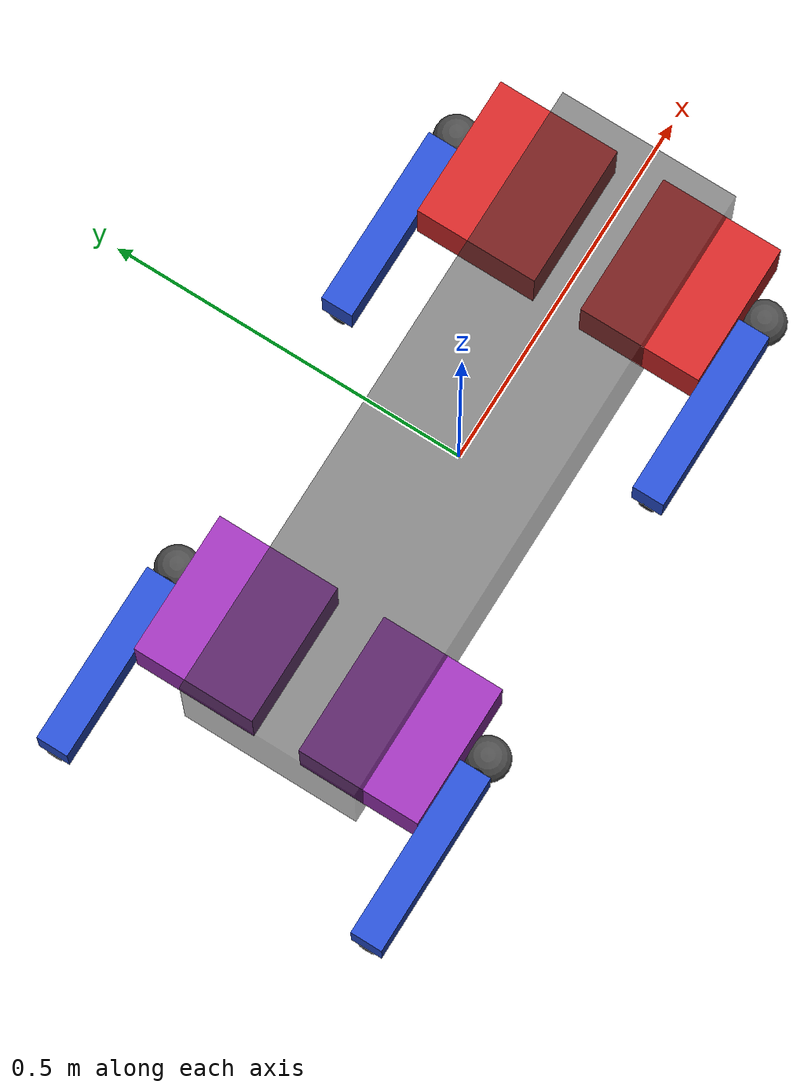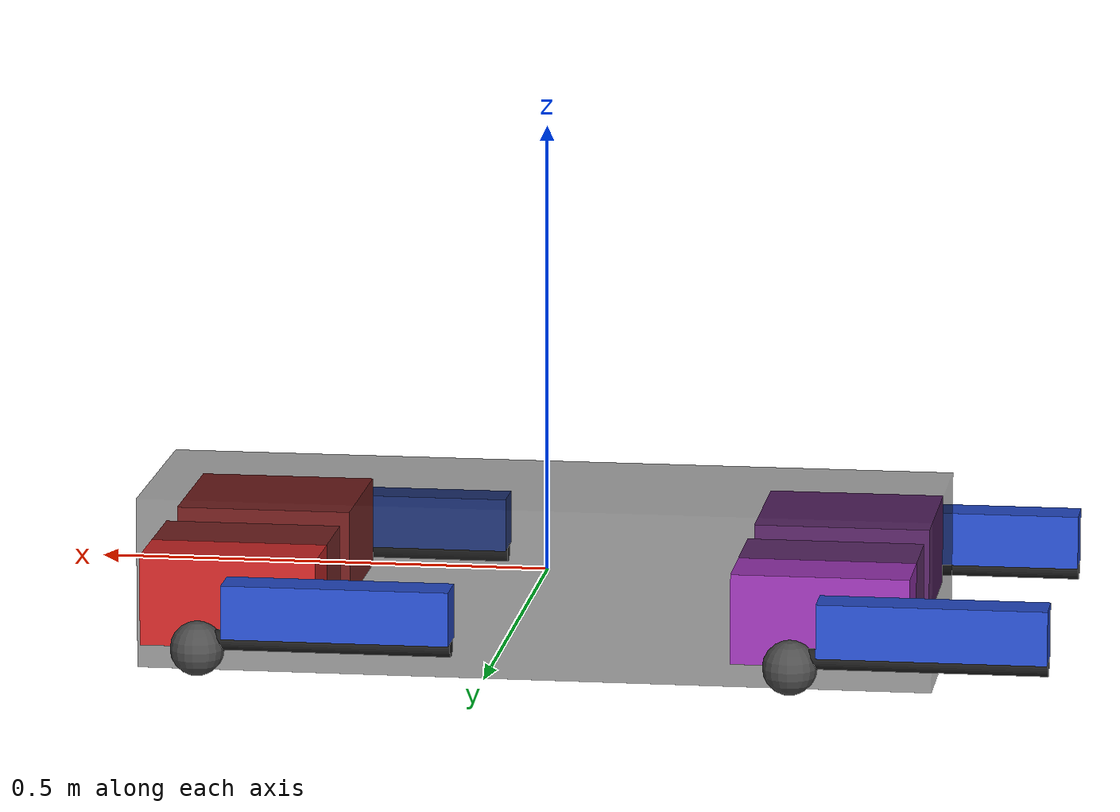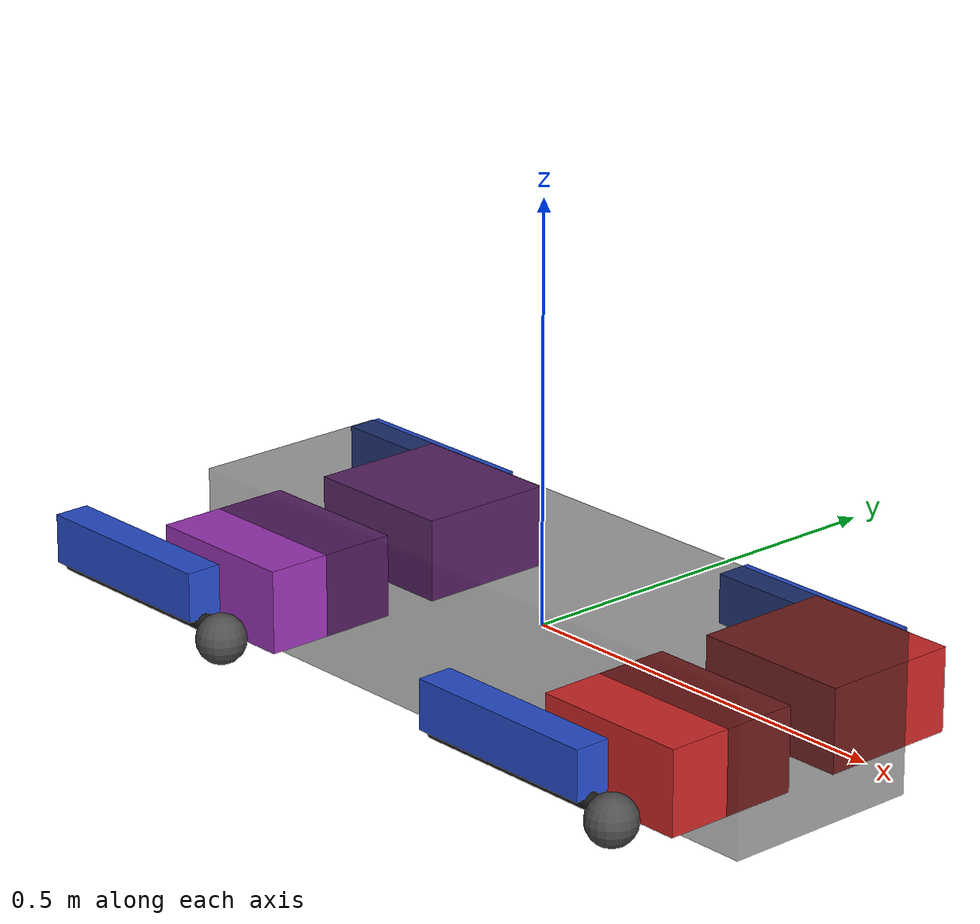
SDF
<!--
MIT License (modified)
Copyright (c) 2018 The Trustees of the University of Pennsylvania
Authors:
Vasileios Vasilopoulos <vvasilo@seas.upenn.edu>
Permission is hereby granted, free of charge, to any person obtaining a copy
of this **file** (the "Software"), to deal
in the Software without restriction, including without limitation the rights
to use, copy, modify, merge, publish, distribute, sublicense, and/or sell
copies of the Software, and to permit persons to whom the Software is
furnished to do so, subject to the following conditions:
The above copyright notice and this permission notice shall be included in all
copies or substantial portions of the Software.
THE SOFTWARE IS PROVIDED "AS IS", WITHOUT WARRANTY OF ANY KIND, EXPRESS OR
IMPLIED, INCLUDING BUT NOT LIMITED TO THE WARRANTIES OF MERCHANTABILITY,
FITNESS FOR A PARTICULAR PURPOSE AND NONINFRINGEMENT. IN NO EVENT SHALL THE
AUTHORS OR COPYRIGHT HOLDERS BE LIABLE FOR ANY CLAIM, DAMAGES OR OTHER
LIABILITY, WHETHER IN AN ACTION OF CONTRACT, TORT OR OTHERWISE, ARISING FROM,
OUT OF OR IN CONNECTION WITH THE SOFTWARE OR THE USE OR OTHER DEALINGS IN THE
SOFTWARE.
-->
<?xml version='1.0'?>

<sdf version='1.6'>
  <model name='vision60'>
    <link name='body'>
      <pose frame=''>0 0 0 0 -0 0</pose>
      <inertial>
        <pose frame=''>0 0 0 0 -0 0</pose>
        <mass>12</mass>
        <inertia>
          <ixx>0.0986</ixx>
          <ixy>0</ixy>
          <ixz>0</ixz>
          <iyy>0.8105</iyy>
          <iyz>0</iyz>
          <izz>0.8369</izz>
        </inertia>
      </inertial>
      <collision name='body_collision'>
        <pose frame=''>0 0 0 0 -0 0</pose>
        <geometry>
          <box>
            <size>0.05 0.25 0.19</size>
          </box>
        </geometry>
        <surface>
          <contact>
            <ode/>
          </contact>
          <friction>
            <ode/>
          </friction>
        </surface>
      </collision>
      <visual name='body_visual'>
        <pose frame=''>0 0 0 0 -0 0</pose>
        <geometry>
          <box>
            <size>0.88 0.25 0.19</size>
          </box>
        </geometry>
        <material>
          <script>
            <name>Gazebo/BlackTransparent</name>
            <uri>file://media/materials/scripts/gazebo.material</uri>
          </script>
        </material>
      </visual>
      <gravity>1</gravity>
      <velocity_decay/>
      <self_collide>0</self_collide>
    </link>
    <link name='hip2'>
      <pose frame=''>0.325 -0.1575 0 0 -0 0</pose>
      <inertial>
        <pose frame=''>0 0 0 0 -0 0</pose>
        <mass>2.75</mass>
        <inertia>
          <ixx>0.00891458</ixx>
          <ixy>0</ixy>
          <ixz>0</ixz>
          <iyy>0.0100573</iyy>
          <iyz>0</iyz>
          <izz>0.015337</izz>
        </inertia>
      </inertial>
      <collision name='hip2_collision'>
        <pose frame=''>0 0.039 0 1.5708 -0 0</pose>
        <geometry>
          <box>
            <size>0.195 0.1 0.17</size>
          </box>
        </geometry>
        <surface>
          <contact>
            <ode/>
          </contact>
          <friction>
            <ode/>
          </friction>
        </surface>
      </collision>
      <visual name='hip2_visual'>
        <pose frame=''>0 0.039 0 1.5708 -0 0</pose>
        <geometry>
          <box>
            <size>0.195 0.1 0.17</size>
          </box>
        </geometry>
        <material>
          <script>
            <name>Gazebo/Red</name>
            <uri>file://media/materials/scripts/gazebo.material</uri>
          </script>
        </material>
      </visual>
      <gravity>1</gravity>
      <velocity_decay/>
      <self_collide>0</self_collide>
    </link>
    <joint name='10' type='revolute'>
      <child>hip2</child>
      <parent>body</parent>
      <axis>
        <xyz>1 0 0</xyz>
        <limit>
          <lower>-0.43</lower>
          <upper>0.43</upper>
          <effort>375</effort>
          <velocity>8.6</velocity>
        </limit>
        <dynamics>
          <damping>0</damping>
          <friction>0</friction>
          <spring_reference>0</spring_reference>
          <spring_stiffness>0</spring_stiffness>
        </dynamics>
        <use_parent_model_frame>1</use_parent_model_frame>
      </axis>
    </joint>
    <link name='upper2'>
      <pose frame=''>0.325 -0.2255 0 0 -0 0</pose>
      <inertial>
        <pose frame=''>0 0 0 0 -0 0</pose>
        <mass>0.625</mass>
        <inertia>
          <ixx>0.0003125</ixx>
          <ixy>0</ixy>
          <ixz>0</ixz>
          <iyy>0.0040625</iyy>
          <iyz>0</iyz>
          <izz>0.0040625</izz>
        </inertia>
      </inertial>
      <collision name='upper2_collision'>
        <pose frame=''>-0.125 0 0 0 -0 0</pose>
        <geometry>
          <box>
            <size>0.25 0.044 0.06</size>
          </box>
        </geometry>
        <surface>
          <contact>
            <ode/>
          </contact>
          <friction>
            <ode/>
          </friction>
        </surface>
      </collision>
      <visual name='upper2_visual'>
        <pose frame=''>-0.125 -0 0 0 -0 0</pose>
        <geometry>
          <box>
            <size>0.25 0.044 0.06</size>
          </box>
        </geometry>
        <material>
          <script>
            <name>Gazebo/Blue</name>
            <uri>file://media/materials/scripts/gazebo.material</uri>
          </script>
        </material>
      </visual>
      <gravity>1</gravity>
      <velocity_decay/>
      <self_collide>0</self_collide>
    </link>
    <joint name='4' type='revolute'>
      <child>upper2</child>
      <parent>hip2</parent>
      <axis>
        <xyz>0 -1 0</xyz>
        <limit>
          <lower>-3.14159</lower>
          <upper>3.14159</upper>
          <effort>87.5</effort>
          <velocity>30</velocity>
        </limit>
        <dynamics>
          <damping>0</damping>
          <friction>0</friction>
          <spring_reference>0</spring_reference>
          <spring_stiffness>0</spring_stiffness>
        </dynamics>
        <use_parent_model_frame>1</use_parent_model_frame>
      </axis>
    </joint>
    <link name='lower2'>
      <pose frame=''>0.075 -0.2255 0 0 -0 0</pose>
      <inertial>
        <pose frame=''>0.12 0 -0.019757 0 -0 0</pose>
        <mass>0.35</mass>
        <inertia>
          <ixx>0.00151791</ixx>
          <ixy>0</ixy>
          <ixz>0.0011064</ixz>
          <iyy>0.00823791</iyy>
          <iyz>0</iyz>
          <izz>0.006845</izz>
        </inertia>
      </inertial>
      <collision name='lower2_collision'>
        <pose frame=''>0.14 0 -0.0355 3.14159 1.57079 3.14159</pose>
        <geometry>
          <cylinder>
            <length>0.28</length>
            <radius>0.011</radius>
          </cylinder>
        </geometry>
        <surface>
          <contact>
            <ode/>
          </contact>
          <friction>
            <ode/>
          </friction>
        </surface>
      </collision>
      <collision name='toe2_collision'>
        <pose frame=''>0.28 0 -0.0461 0 -0 0</pose>
        <geometry>
          <sphere>
            <radius>0.03</radius>
          </sphere>
        </geometry>
        <surface>
          <bounce>
            <restitution_coefficient>0</restitution_coefficient>
            <threshold>1e+06</threshold>
          </bounce>
          <friction>
            <torsional>
              <coefficient>0.3</coefficient>
            </torsional>
            <ode>
              <mu>20</mu>
              <mu2>10</mu2>
            </ode>
            <bullet>
              <rolling_friction>0.3</rolling_friction>
              <friction2>10</friction2>
            </bullet>
          </friction>
          <contact>
            <bullet>
              <kp>30000</kp>
              <kd>1000</kd>
              <split_impulse>1</split_impulse>
              <split_impulse_penetration_threshold>-0.01</split_impulse_penetration_threshold>
            </bullet>
            <ode>
              <kp>30000</kp>
              <kd>1000</kd>
            </ode>
          </contact>
        </surface>
      </collision>
      <sensor name="toe2_contact" type="contact">
        <plugin name="toe2_plugin" filename="libcontact.so"/>
        <contact>
          <collision>toe2_collision</collision>
        </contact>
      </sensor>
      <visual name='lower2_visual'>
        <pose frame=''>0.14 0 -0.0355 3.14159 1.57079 3.14159</pose>
        <geometry>
          <cylinder>
            <length>0.28</length>
            <radius>0.011</radius>
          </cylinder>
        </geometry>
        <material>
          <script>
            <name>Gazebo/Black</name>
            <uri>file://media/materials/scripts/gazebo.material</uri>
          </script>
        </material>
      </visual>
      <visual name='lower2_fixed_joint_lump__toe2_visual_1'>
        <pose frame=''>0.28 0 -0.0461 0 -0 0</pose>
        <geometry>
          <sphere>
            <radius>0.03</radius>
          </sphere>
        </geometry>
        <material>
          <script>
            <name>Gazebo/DarkGray</name>
            <uri>file://media/materials/scripts/gazebo.material</uri>
          </script>
        </material>
      </visual>
      <velocity_decay/>
      <gravity>1</gravity>
      <velocity_decay/>
      <self_collide>0</self_collide>
    </link>
    <joint name='5' type='revolute'>
      <child>lower2</child>
      <parent>upper2</parent>
      <axis>
        <xyz>0 1 0</xyz>
        <limit>
          <lower>0</lower>
          <upper>3.14159</upper>
          <effort>87.5</effort>
          <velocity>30</velocity>
        </limit>
        <dynamics>
          <damping>0</damping>
          <friction>0</friction>
          <spring_reference>0</spring_reference>
          <spring_stiffness>0</spring_stiffness>
        </dynamics>
        <use_parent_model_frame>1</use_parent_model_frame>
      </axis>
    </joint>
    <link name='hip3'>
      <pose frame=''>-0.325 -0.1575 0 0 -0 0</pose>
      <inertial>
        <pose frame=''>0 0 0 0 -0 0</pose>
        <mass>2.75</mass>
        <inertia>
          <ixx>0.00891458</ixx>
          <ixy>0</ixy>
          <ixz>0</ixz>
          <iyy>0.0100573</iyy>
          <iyz>0</iyz>
          <izz>0.015337</izz>
        </inertia>
      </inertial>
      <collision name='hip3_collision'>
        <pose frame=''>0 0.039 0 1.5708 -0 0</pose>
        <geometry>
          <box>
            <size>0.195 0.1 0.17</size>
          </box>
        </geometry>
        <surface>
          <contact>
            <ode/>
          </contact>
          <friction>
            <ode/>
          </friction>
        </surface>
      </collision>
      <visual name='hip3_visual'>
        <pose frame=''>0 0.039 0 1.5708 -0 0</pose>
        <geometry>
          <box>
            <size>0.195 0.1 0.17</size>
          </box>
        </geometry>
        <material>
          <script>
            <name>Gazebo/Purple</name>
            <uri>file://media/materials/scripts/gazebo.material</uri>
          </script>
        </material>
      </visual>
      <gravity>1</gravity>
      <velocity_decay/>
      <self_collide>0</self_collide>
    </link>
    <joint name='11' type='revolute'>
      <child>hip3</child>
      <parent>body</parent>
      <axis>
        <xyz>1 0 0</xyz>
        <limit>
          <lower>-0.43</lower>
          <upper>0.43</upper>
          <effort>375</effort>
          <velocity>8.6</velocity>
        </limit>
        <dynamics>
          <damping>0</damping>
          <friction>0</friction>
          <spring_reference>0</spring_reference>
          <spring_stiffness>0</spring_stiffness>
        </dynamics>
        <use_parent_model_frame>1</use_parent_model_frame>
      </axis>
    </joint>
    <link name='upper3'>
      <pose frame=''>-0.325 -0.2255 0 0 -0 0</pose>
      <inertial>
        <pose frame=''>0 0 0 0 -0 0</pose>
        <mass>0.625</mass>
        <inertia>
          <ixx>0.0003125</ixx>
          <ixy>0</ixy>
          <ixz>0</ixz>
          <iyy>0.0040625</iyy>
          <iyz>0</iyz>
          <izz>0.0040625</izz>
        </inertia>
      </inertial>
      <collision name='upper3_collision'>
        <pose frame=''>-0.125 0 0 0 -0 0</pose>
        <geometry>
          <box>
            <size>0.25 0.044 0.06</size>
          </box>
        </geometry>
        <surface>
          <contact>
            <ode/>
          </contact>
          <friction>
            <ode/>
          </friction>
        </surface>
      </collision>
      <visual name='upper3_visual'>
        <pose frame=''>-0.125 -0 0 0 -0 0</pose>
        <geometry>
          <box>
            <size>0.25 0.044 0.06</size>
          </box>
        </geometry>
        <material>
          <script>
            <name>Gazebo/Blue</name>
            <uri>file://media/materials/scripts/gazebo.material</uri>
          </script>
        </material>
      </visual>
      <gravity>1</gravity>
      <velocity_decay/>
      <self_collide>0</self_collide>
    </link>
    <joint name='6' type='revolute'>
      <child>upper3</child>
      <parent>hip3</parent>
      <axis>
        <xyz>0 -1 0</xyz>
        <limit>
          <lower>-3.14159</lower>
          <upper>3.14159</upper>
          <effort>87.5</effort>
          <velocity>30</velocity>
        </limit>
        <dynamics>
          <damping>0</damping>
          <friction>0</friction>
          <spring_reference>0</spring_reference>
          <spring_stiffness>0</spring_stiffness>
        </dynamics>
        <use_parent_model_frame>1</use_parent_model_frame>
      </axis>
    </joint>
    <link name='lower3'>
      <pose frame=''>-0.575 -0.2255 0 0 -0 0</pose>
      <inertial>
        <pose frame=''>0.12 0 -0.019757 0 -0 0</pose>
        <mass>0.35</mass>
        <inertia>
          <ixx>0.00151791</ixx>
          <ixy>0</ixy>
          <ixz>0.0011064</ixz>
          <iyy>0.00823791</iyy>
          <iyz>0</iyz>
          <izz>0.006845</izz>
        </inertia>
      </inertial>
      <collision name='lower3_collision'>
        <pose frame=''>0.14 0 -0.0355 3.14159 1.57079 3.14159</pose>
        <geometry>
          <cylinder>
            <length>0.28</length>
            <radius>0.011</radius>
          </cylinder>
        </geometry>
        <surface>
          <contact>
            <ode/>
          </contact>
          <friction>
            <ode/>
          </friction>
        </surface>
      </collision>
      <collision name='toe3_collision'>
        <pose frame=''>0.28 0 -0.0461 0 -0 0</pose>
        <geometry>
          <sphere>
            <radius>0.03</radius>
          </sphere>
        </geometry>
        <surface>
          <bounce>
            <restitution_coefficient>0</restitution_coefficient>
            <threshold>1e+06</threshold>
          </bounce>
          <friction>
            <torsional>
              <coefficient>0.3</coefficient>
            </torsional>
            <ode>
              <mu>20</mu>
              <mu2>10</mu2>
            </ode>
            <bullet>
              <rolling_friction>0.3</rolling_friction>
              <friction2>10</friction2>
            </bullet>
          </friction>
          <contact>
            <bullet>
              <kp>30000</kp>
              <kd>1000</kd>
              <split_impulse>1</split_impulse>
              <split_impulse_penetration_threshold>-0.01</split_impulse_penetration_threshold>
            </bullet>
            <ode>
              <kp>30000</kp>
              <kd>1000</kd>
            </ode>
          </contact>
        </surface>
      </collision>
      <sensor name="toe3_contact" type="contact">
        <plugin name="toe3_plugin" filename="libcontact.so"/>
        <contact>
          <collision>toe3_collision</collision>
        </contact>
      </sensor>
      <visual name='lower3_visual'>
        <pose frame=''>0.14 0 -0.0355 3.14159 1.57079 3.14159</pose>
        <geometry>
          <cylinder>
            <length>0.28</length>
            <radius>0.011</radius>
          </cylinder>
        </geometry>
        <material>
          <script>
            <name>Gazebo/Black</name>
            <uri>file://media/materials/scripts/gazebo.material</uri>
          </script>
        </material>
      </visual>
      <visual name='lower3_fixed_joint_lump__toe3_visual_1'>
        <pose frame=''>0.28 0 -0.0461 0 -0 0</pose>
        <geometry>
          <sphere>
            <radius>0.03</radius>
          </sphere>
        </geometry>
        <material>
          <script>
            <name>Gazebo/DarkGray</name>
            <uri>file://media/materials/scripts/gazebo.material</uri>
          </script>
        </material>
      </visual>
      <velocity_decay/>
      <gravity>1</gravity>
      <velocity_decay/>
      <self_collide>0</self_collide>
    </link>
    <joint name='7' type='revolute'>
      <child>lower3</child>
      <parent>upper3</parent>
      <axis>
        <xyz>0 1 0</xyz>
        <limit>
          <lower>0</lower>
          <upper>3.14159</upper>
          <effort>87.5</effort>
          <velocity>30</velocity>
        </limit>
        <dynamics>
          <damping>0</damping>
          <friction>0</friction>
          <spring_reference>0</spring_reference>
          <spring_stiffness>0</spring_stiffness>
        </dynamics>
        <use_parent_model_frame>1</use_parent_model_frame>
      </axis>
    </joint>
    <link name='hip0'>
      <pose frame=''>0.325 0.1575 0 0 -0 0</pose>
      <inertial>
        <pose frame=''>0 0 0 0 -0 0</pose>
        <mass>2.75</mass>
        <inertia>
          <ixx>0.00891458</ixx>
          <ixy>0</ixy>
          <ixz>0</ixz>
          <iyy>0.0100573</iyy>
          <iyz>0</iyz>
          <izz>0.015337</izz>
        </inertia>
      </inertial>
      <collision name='hip0_collision'>
        <pose frame=''>0 -0.039 0 1.5708 -0 0</pose>
        <geometry>
          <box>
            <size>0.195 0.1 0.17</size>
          </box>
        </geometry>
        <surface>
          <contact>
            <ode/>
          </contact>
          <friction>
            <ode/>
          </friction>
        </surface>
      </collision>
      <visual name='hip0_visual'>
        <pose frame=''>0 -0.039 0 1.5708 -0 0</pose>
        <geometry>
          <box>
            <size>0.195 0.1 0.17</size>
          </box>
        </geometry>
        <material>
          <script>
            <name>Gazebo/Red</name>
            <uri>file://media/materials/scripts/gazebo.material</uri>
          </script>
        </material>
      </visual>
      <gravity>1</gravity>
      <velocity_decay/>
      <self_collide>0</self_collide>
    </link>
    <joint name='8' type='revolute'>
      <child>hip0</child>
      <parent>body</parent>
      <axis>
        <xyz>1 0 0</xyz>
        <limit>
          <lower>-0.43</lower>
          <upper>0.43</upper>
          <effort>375</effort>
          <velocity>8.6</velocity>
        </limit>
        <dynamics>
          <damping>0</damping>
          <friction>0</friction>
          <spring_reference>0</spring_reference>
          <spring_stiffness>0</spring_stiffness>
        </dynamics>
        <use_parent_model_frame>1</use_parent_model_frame>
      </axis>
    </joint>
    <link name='upper0'>
      <pose frame=''>0.325 0.2255 0 0 -0 0</pose>
      <inertial>
        <pose frame=''>0 0 0 0 -0 0</pose>
        <mass>0.625</mass>
        <inertia>
          <ixx>0.0003125</ixx>
          <ixy>0</ixy>
          <ixz>0</ixz>
          <iyy>0.0040625</iyy>
          <iyz>0</iyz>
          <izz>0.0040625</izz>
        </inertia>
      </inertial>
      <collision name='upper0_collision'>
        <pose frame=''>-0.125 0 0 0 -0 0</pose>
        <geometry>
          <box>
            <size>0.25 0.044 0.06</size>
          </box>
        </geometry>
        <surface>
          <contact>
            <ode/>
          </contact>
          <friction>
            <ode/>
          </friction>
        </surface>
      </collision>
      <visual name='upper0_visual'>
        <pose frame=''>-0.125 0 0 0 -0 0</pose>
        <geometry>
          <box>
            <size>0.25 0.044 0.06</size>
          </box>
        </geometry>
        <material>
          <script>
            <name>Gazebo/Blue</name>
            <uri>file://media/materials/scripts/gazebo.material</uri>
          </script>
        </material>
      </visual>
      <gravity>1</gravity>
      <velocity_decay/>
      <self_collide>0</self_collide>
    </link>
    <joint name='0' type='revolute'>
      <child>upper0</child>
      <parent>hip0</parent>
      <axis>
        <xyz>0 -1 0</xyz>
        <limit>
          <lower>-3.14159</lower>
          <upper>3.14159</upper>
          <effort>87.5</effort>
          <velocity>30</velocity>
        </limit>
        <dynamics>
          <damping>0</damping>
          <friction>0</friction>
          <spring_reference>0</spring_reference>
          <spring_stiffness>0</spring_stiffness>
        </dynamics>
        <use_parent_model_frame>1</use_parent_model_frame>
      </axis>
    </joint>
    <link name='lower0'>
      <pose frame=''>0.075 0.2255 0 0 -0 0</pose>
      <inertial>
        <pose frame=''>0.12 0 -0.019757 0 -0 0</pose>
        <mass>0.35</mass>
        <inertia>
          <ixx>0.00151791</ixx>
          <ixy>0</ixy>
          <ixz>0.0011064</ixz>
          <iyy>0.00823791</iyy>
          <iyz>0</iyz>
          <izz>0.006845</izz>
        </inertia>
      </inertial>
      <collision name='lower0_collision'>
        <pose frame=''>0.14 0 -0.0355 3.14159 1.57079 3.14159</pose>
        <geometry>
          <cylinder>
            <length>0.28</length>
            <radius>0.011</radius>
          </cylinder>
        </geometry>
        <surface>
          <contact>
            <ode/>
          </contact>
          <friction>
            <ode/>
          </friction>
        </surface>
      </collision>
      <collision name='toe0_collision'>
        <pose frame=''>0.28 0 -0.0461 0 -0 0</pose>
        <geometry>
          <sphere>
            <radius>0.03</radius>
          </sphere>
        </geometry>
        <surface>
          <bounce>
            <restitution_coefficient>0</restitution_coefficient>
            <threshold>1e+06</threshold>
          </bounce>
          <friction>
            <torsional>
              <coefficient>0.3</coefficient>
            </torsional>
            <ode>
              <mu>20</mu>
              <mu2>10</mu2>
            </ode>
            <bullet>
              <rolling_friction>0.3</rolling_friction>
              <friction2>10</friction2>
            </bullet>
          </friction>
          <contact>
            <bullet>
              <kp>30000</kp>
              <kd>1000</kd>
              <split_impulse>1</split_impulse>
              <split_impulse_penetration_threshold>-0.01</split_impulse_penetration_threshold>
            </bullet>
            <ode>
              <kp>30000</kp>
              <kd>1000</kd>
            </ode>
          </contact>
        </surface>
      </collision>
      <sensor name="toe0_contact" type="contact">
        <plugin name="toe0_plugin" filename="libcontact.so"/>
        <contact>
          <collision>toe0_collision</collision>
        </contact>
      </sensor>
      <visual name='lower0_visual'>
        <pose frame=''>0.14 0 -0.0355 3.14159 1.57079 3.14159</pose>
        <geometry>
          <cylinder>
            <length>0.28</length>
            <radius>0.011</radius>
          </cylinder>
        </geometry>
        <material>
          <script>
            <name>Gazebo/Black</name>
            <uri>file://media/materials/scripts/gazebo.material</uri>
          </script>
        </material>
      </visual>
      <visual name='lower0_fixed_joint_lump__toe0_visual_1'>
        <pose frame=''>0.28 0 -0.0461 0 -0 0</pose>
        <geometry>
          <sphere>
            <radius>0.03</radius>
          </sphere>
        </geometry>
        <material>
          <script>
            <name>Gazebo/DarkGray</name>
            <uri>file://media/materials/scripts/gazebo.material</uri>
          </script>
        </material>
      </visual>
      <velocity_decay/>
      <gravity>1</gravity>
      <velocity_decay/>
      <self_collide>0</self_collide>
    </link>
    <joint name='1' type='revolute'>
      <child>lower0</child>
      <parent>upper0</parent>
      <axis>
        <xyz>0 1 0</xyz>
        <limit>
          <lower>0</lower>
          <upper>3.14159</upper>
          <effort>87.5</effort>
          <velocity>30</velocity>
        </limit>
        <dynamics>
          <damping>0</damping>
          <friction>0</friction>
          <spring_reference>0</spring_reference>
          <spring_stiffness>0</spring_stiffness>
        </dynamics>
        <use_parent_model_frame>1</use_parent_model_frame>
      </axis>
    </joint>
    <link name='hip1'>
      <pose frame=''>-0.325 0.1575 0 0 -0 0</pose>
      <inertial>
        <pose frame=''>0 0 0 0 -0 0</pose>
        <mass>2.75</mass>
        <inertia>
          <ixx>0.00891458</ixx>
          <ixy>0</ixy>
          <ixz>0</ixz>
          <iyy>0.0100573</iyy>
          <iyz>0</iyz>
          <izz>0.015337</izz>
        </inertia>
      </inertial>
      <collision name='hip1_collision'>
        <pose frame=''>0 -0.039 0 1.5708 -0 0</pose>
        <geometry>
          <box>
            <size>0.195 0.1 0.17</size>
          </box>
        </geometry>
        <surface>
          <contact>
            <ode/>
          </contact>
          <friction>
            <ode/>
          </friction>
        </surface>
      </collision>
      <visual name='hip1_visual'>
        <pose frame=''>0 -0.039 0 1.5708 -0 0</pose>
        <geometry>
          <box>
            <size>0.195 0.1 0.17</size>
          </box>
        </geometry>
        <material>
          <script>
            <name>Gazebo/Purple</name>
            <uri>file://media/materials/scripts/gazebo.material</uri>
          </script>
        </material>
      </visual>
      <gravity>1</gravity>
      <velocity_decay/>
      <self_collide>0</self_collide>
    </link>
    <joint name='9' type='revolute'>
      <child>hip1</child>
      <parent>body</parent>
      <axis>
        <xyz>1 0 0</xyz>
        <limit>
          <lower>-0.43</lower>
          <upper>0.43</upper>
          <effort>375</effort>
          <velocity>8.6</velocity>
        </limit>
        <dynamics>
          <damping>0</damping>
          <friction>0</friction>
          <spring_reference>0</spring_reference>
          <spring_stiffness>0</spring_stiffness>
        </dynamics>
        <use_parent_model_frame>1</use_parent_model_frame>
      </axis>
    </joint>
    <link name='upper1'>
      <pose frame=''>-0.325 0.2255 0 0 -0 0</pose>
      <inertial>
        <pose frame=''>0 0 0 0 -0 0</pose>
        <mass>0.625</mass>
        <inertia>
          <ixx>0.0003125</ixx>
          <ixy>0</ixy>
          <ixz>0</ixz>
          <iyy>0.0040625</iyy>
          <iyz>0</iyz>
          <izz>0.0040625</izz>
        </inertia>
      </inertial>
      <collision name='upper1_collision'>
        <pose frame=''>-0.125 0 0 0 -0 0</pose>
        <geometry>
          <box>
            <size>0.25 0.044 0.06</size>
          </box>
        </geometry>
        <surface>
          <contact>
            <ode/>
          </contact>
          <friction>
            <ode/>
          </friction>
        </surface>
      </collision>
      <visual name='upper1_visual'>
        <pose frame=''>-0.125 0 0 0 -0 0</pose>
        <geometry>
          <box>
            <size>0.25 0.044 0.06</size>
          </box>
        </geometry>
        <material>
          <script>
            <name>Gazebo/Blue</name>
            <uri>file://media/materials/scripts/gazebo.material</uri>
          </script>
        </material>
      </visual>
      <gravity>1</gravity>
      <velocity_decay/>
      <self_collide>0</self_collide>
    </link>
    <joint name='2' type='revolute'>
      <child>upper1</child>
      <parent>hip1</parent>
      <axis>
        <xyz>0 -1 0</xyz>
        <limit>
          <lower>-3.14159</lower>
          <upper>3.14159</upper>
          <effort>87.5</effort>
          <velocity>30</velocity>
        </limit>
        <dynamics>
          <damping>0</damping>
          <friction>0</friction>
          <spring_reference>0</spring_reference>
          <spring_stiffness>0</spring_stiffness>
        </dynamics>
        <use_parent_model_frame>1</use_parent_model_frame>
      </axis>
    </joint>
    <link name='lower1'>
      <pose frame=''>-0.575 0.2255 0 0 -0 0</pose>
      <inertial>
        <pose frame=''>0.12 0 -0.019757 0 -0 0</pose>
        <mass>0.35</mass>
        <inertia>
          <ixx>0.00151791</ixx>
          <ixy>0</ixy>
          <ixz>0.0011064</ixz>
          <iyy>0.00823791</iyy>
          <iyz>0</iyz>
          <izz>0.006845</izz>
        </inertia>
      </inertial>
      <collision name='lower1_collision'>
        <pose frame=''>0.14 0 -0.0355 3.14159 1.57079 3.14159</pose>
        <geometry>
          <cylinder>
            <length>0.28</length>
            <radius>0.011</radius>
          </cylinder>
        </geometry>
        <surface>
          <contact>
            <ode/>
          </contact>
          <friction>
            <ode/>
          </friction>
        </surface>
      </collision>
      <collision name='toe1_collision'>
        <pose frame=''>0.28 0 -0.0461 0 -0 0</pose>
        <geometry>
          <sphere>
            <radius>0.03</radius>
          </sphere>
        </geometry>
        <surface>
          <bounce>
            <restitution_coefficient>0</restitution_coefficient>
            <threshold>1e+06</threshold>
          </bounce>
          <friction>
            <torsional>
              <coefficient>0.3</coefficient>
            </torsional>
            <ode>
              <mu>20</mu>
              <mu2>10</mu2>
            </ode>
            <bullet>
              <rolling_friction>0.3</rolling_friction>
              <friction2>10</friction2>
            </bullet>
          </friction>
          <contact>
            <bullet>
              <kp>30000</kp>
              <kd>1000</kd>
              <split_impulse>1</split_impulse>
              <split_impulse_penetration_threshold>-0.01</split_impulse_penetration_threshold>
            </bullet>
            <ode>
              <kp>30000</kp>
              <kd>1000</kd>
            </ode>
          </contact>
        </surface>
      </collision>
      <sensor name="toe1_contact" type="contact">
        <plugin name="toe1_plugin" filename="libcontact.so"/>
        <contact>
          <collision>toe1_collision</collision>
        </contact>
      </sensor>
      <visual name='lower1_visual'>
        <pose frame=''>0.14 0 -0.0355 3.14159 1.57079 3.14159</pose>
        <geometry>
          <cylinder>
            <length>0.28</length>
            <radius>0.011</radius>
          </cylinder>
        </geometry>
        <material>
          <script>
            <name>Gazebo/Black</name>
            <uri>file://media/materials/scripts/gazebo.material</uri>
          </script>
        </material>
      </visual>
      <visual name='lower1_fixed_joint_lump__toe1_visual_1'>
        <pose frame=''>0.28 0 -0.0461 0 -0 0</pose>
        <geometry>
          <sphere>
            <radius>0.03</radius>
          </sphere>
        </geometry>
        <material>
          <script>
            <name>Gazebo/DarkGray</name>
            <uri>file://media/materials/scripts/gazebo.material</uri>
          </script>
        </material>
      </visual>
      <velocity_decay/>
      <gravity>1</gravity>
      <velocity_decay/>
      <self_collide>0</self_collide>
    </link>
    <joint name='3' type='revolute'>
      <child>lower1</child>
      <parent>upper1</parent>
      <axis>
        <xyz>0 1 0</xyz>
        <limit>
          <lower>0</lower>
          <upper>3.14159</upper>
          <effort>87.5</effort>
          <velocity>30</velocity>
        </limit>
        <dynamics>
          <damping>0</damping>
          <friction>0</friction>
          <spring_reference>0</spring_reference>
          <spring_stiffness>0</spring_stiffness>
        </dynamics>
        <use_parent_model_frame>1</use_parent_model_frame>
      </axis>
    </joint>
    <static>0</static>
    <plugin name='gazebo_ros_control' filename='libgazebo_ros_control.so'>
      <robotNamespace>/vision60</robotNamespace>
    </plugin>
  </model>
</sdf>
